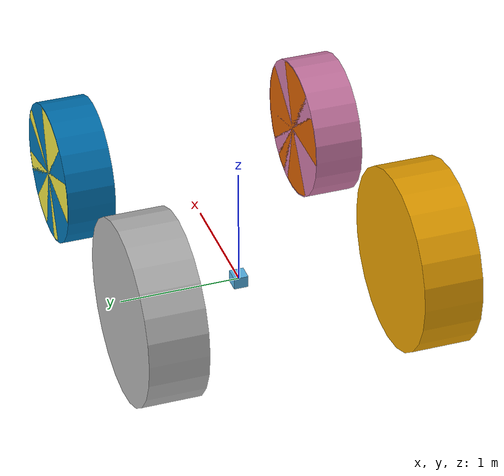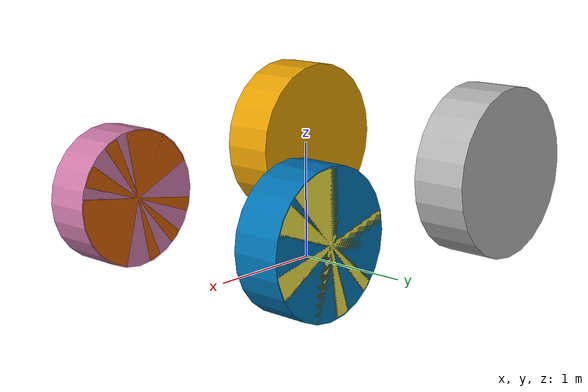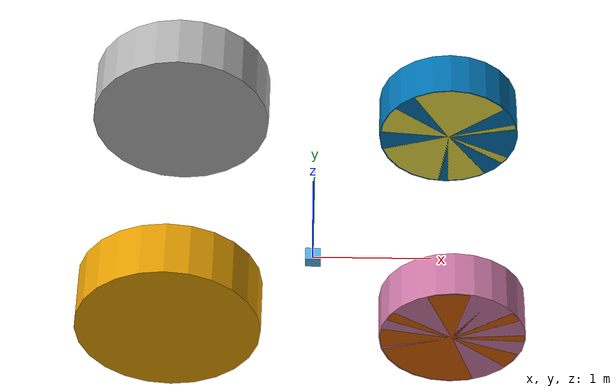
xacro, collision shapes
<?xml version="1.0"?>

<robot name="tractor_ackerman" xmlns:xacro="http://ros.org/wiki/xacro">

    <xacro:arg name="robot_namespace" default="/" />
    <xacro:include filename="$(find tractor_description)/urdf/tractor_xacro.xacro" />
    <xacro:include filename="$(find tractor_description)/urdf/tractor_steering_hinge.xacro" />
    <xacro:include filename="$(find tractor_description)/urdf/tractor_ackerman.gazebo" />

    <!-- Variables -->
    <xacro:property name="M_PI" value="3.14159"/>

    <!-- Vehicle Geometries -->
    <xacro:property name="base_x_size" value="0.13" />
    <xacro:property name="base_y_size" value="0.12" />
    <xacro:property name="base_z_size" value="0.10" />

    <xacro:property name="wheelbase" value="2.26593"/>
    <xacro:property name="front_track" value="1.722"/>
    <xacro:property name="rear_track" value="1.71325"/>
    <xacro:property name="wheel_vertical_offset" value="0.74178" />
    <xacro:property name="base_mass" value="2.1557"/>

    <xacro:property name="front_wheel_length" value="0.400" />
    <xacro:property name="front_wheel_radius" value="0.586745" />
    <xacro:property name="rear_wheel_length" value="0.47518" />
    <xacro:property name="rear_wheel_radius" value="0.74178" />

    <link name="base_footprint"/>

    <joint name="base_joint" type="fixed">
    <parent link="base_footprint"/>
    <child link="base_link"/>
    <origin xyz="0.0 0.0 0" rpy="0 0 0"/>
    </joint>
    <!-- Base link -->
    <link name="base_link">
        <visual>
            <origin xyz="0 0 0" rpy="0 0 0" />
            <geometry>
                <mesh filename="package://tractor_description/meshes/tractor_body.dae" scale="1 1 1"/>
            </geometry>
        </visual>
        <collision>
            <origin xyz="0 0 0" rpy="0 0 0" />
          <geometry>
              <box size="${base_x_size} ${base_y_size} ${base_z_size}"/>
          </geometry>
        </collision>
    </link>

    <link name="inertial_link">
        <inertial>
            <origin xyz="0.0 0.0 0.0" />
            <mass value="${base_mass}" />
            <inertia ixx="0.24" ixy="0" ixz="0"
                     iyy="0.96" iyz="0"
                     izz="0.96" />
        </inertial>
    </link>

    <joint name="inertial_joint" type="fixed">
        <origin xyz="0 0 0" rpy="0 0 0" />
        <parent link="base_link" />
        <child link="inertial_link" />
    </joint>

    <xacro:tractor_left_steering_hinge parent_prefix="base_link" wheel_prefix="left_steering_hinge">
        <origin xyz="${wheelbase/2} ${front_track/2} ${front_wheel_radius}" rpy="0 0  0" />
    </xacro:tractor_left_steering_hinge>

    <xacro:tractor_right_steering_hinge parent_prefix="base_link" wheel_prefix="right_steering_hinge">
        <origin xyz="${wheelbase/2} ${-front_track/2} ${front_wheel_radius}" rpy="${M_PI} 0 0" />
    </xacro:tractor_right_steering_hinge>

    <link name="rear_left_wheel_link">
        <inertial>
            <origin xyz="0 0 0" />
            <mass value="0.5" />
            <inertia ixx="0.01055" ixy="0" ixz="0" iyy="0.00075" iyz="0" izz="0.01055" />
        </inertial>
        <visual>
            <origin xyz="0 0 0" rpy="0 0 0" />
            <geometry>
                <mesh filename="package://tractor_description/meshes/wheel_rear_right.dae" />
            </geometry>
        </visual>
        <collision>
            <origin xyz="0 ${rear_wheel_length/2} 0" rpy="1.57 0 0" />
          <geometry>
              <cylinder length="${rear_wheel_length}" radius="${rear_wheel_radius}" />
          </geometry>
        </collision>
    </link>
    <joint name="rear_left_wheel" type="continuous">
        <parent link="base_link"/>
        <child link="rear_left_wheel_link"/>
        <origin xyz="${-wheelbase/2} ${rear_track/2} ${rear_wheel_radius}" rpy="0 0 0" />
        <axis xyz="0 1 0"/>
    </joint>

    <link name="rear_right_wheel_link">
        <inertial>
            <origin xyz="0 0 0" />
            <mass value="0.5" />
            <inertia ixx="0.01055" ixy="0" ixz="0" iyy="0.00075" iyz="0" izz="0.01055" />
        </inertial>
        <visual>
            <origin xyz="0 0 0" rpy="0 0 0" />
            <geometry>
                <mesh filename="package://tractor_description/meshes/wheel_rear_left.dae" />
            </geometry>
        </visual>
            <collision>
                <origin xyz="0 ${rear_wheel_length/2} 0" rpy="1.57 0 0" />
              <geometry>
                  <cylinder length="${rear_wheel_length}" radius="${rear_wheel_radius}" />
              </geometry>
            </collision>
        </link>

        <joint name="rear_right_wheel" type="continuous">
            <parent link="base_link"/>
            <child link="rear_right_wheel_link"/>
            <origin xyz="${-wheelbase/2} ${-rear_track/2} ${rear_wheel_radius}" rpy="${M_PI} 0 0" />
            <axis xyz="0 -1 0"/>
        </joint>
</robot>

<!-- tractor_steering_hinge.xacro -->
<robot name="tractor_steering_hinge" xmlns:xacro="http://ros.org/wiki/xacro">

    <xacro:macro name="tractor_left_steering_hinge" params="parent_prefix wheel_prefix *joint_pose">
        <link name="${wheel_prefix}">
            <inertial>
              <mass value="0.25" />
              <inertia ixx="0.00525" ixy="0" ixz="0" iyy="0.00035" iyz="0" izz="0.00525" />
              <origin xyz="0 0 0" />

            </inertial>
            <visual>
                <origin xyz="0 0 0" rpy="0 0 0" />
                <geometry>
                  <cylinder length="0.0001" radius="0.0001" />
                </geometry>
            </visual>
            <collision>
              <origin xyz="0 ${front_wheel_length/2} 0" rpy="1.57 0 0" />
              <geometry>
                  <cylinder length="${front_wheel_length}" radius="${front_wheel_radius-0.01}" />
              </geometry>
            </collision>
        </link>

        <joint name="${wheel_prefix}_wheel" type="revolute">
            <parent link="${parent_prefix}"/>
            <child link="${wheel_prefix}"/>
            <xacro:insert_block name="joint_pose"/>
            <axis xyz="0 0 1" />
            <limit lower="-0.523598767" upper="0.523598767" effort="5" velocity="0.5" />
            <dynamics damping="1.0" friction="2.0"/>

        </joint>

        <link name="front_left_wheel_link">
          <inertial>
            <mass value="0.25" />
            <inertia ixx="0.00525" ixy="0" ixz="0" iyy="0.00035" iyz="0" izz="0.00525" />
            <origin xyz="0 0 0" />

          </inertial>
          <visual>
              <origin xyz="0 0 0" rpy="0 0 0" />
              <geometry>
                  <mesh filename="package://tractor_description/meshes/wheel_front_right.dae" />
              </geometry>
          </visual>
          <collision>
            <origin xyz="0 ${front_wheel_length/2} 0" rpy="1.57 0 0" />
            <geometry>
                <cylinder length="${front_wheel_length}" radius="${front_wheel_radius}" />
            </geometry>
          </collision>
      </link>

      <joint name="front_left_wheel" type="continuous">
          <parent link="${wheel_prefix}"/>
          <child link="front_left_wheel_link"/>
          <origin xyz="0 0 0" rpy="0 0  0" />
          <axis xyz="0 1 0"/>
      </joint>
    </xacro:macro>

    <xacro:macro name="tractor_right_steering_hinge" params="parent_prefix wheel_prefix *joint_pose">
        <link name="${wheel_prefix}">
          <inertial>
            <mass value="0.25" />
            <inertia ixx="0.00525" ixy="0" ixz="0" iyy="0.00035" iyz="0" izz="0.00525" />
            <origin xyz="0 0 0" />

          </inertial>
            <visual>
                <origin xyz="0 0 0" rpy="0 0 0" />
                <geometry>
                  <cylinder length="0.0001" radius="0.0001" />
                </geometry>
            </visual>
            <collision>
              <origin xyz="0 ${front_wheel_length/2} 0" rpy="1.57 0 0" />
              <geometry>
                  <cylinder length="${front_wheel_length}" radius="${front_wheel_radius-0.01}" />
              </geometry>
            </collision>
        </link>

        <joint name="${wheel_prefix}_wheel" type="revolute">
            <parent link="${parent_prefix}"/>
            <child link="${wheel_prefix}"/>
            <xacro:insert_block name="joint_pose"/>
            <axis xyz="0 0 -1"/>
            <limit lower="-0.523598767" upper="0.523598767" effort="5" velocity="0.5" />
            <dynamics damping="1.0" friction="2.0"/>
        </joint>

        <link name="front_right_wheel_link">
          <inertial>
            <mass value="0.25" />
            <inertia ixx="0.00525" ixy="0" ixz="0" iyy="0.00035" iyz="0" izz="0.00525" />
            <origin xyz="0 0 0" />
          </inertial>
          <visual>
              <origin xyz="0 0 0" rpy="0 0 0" />
              <geometry>
                  <mesh filename="package://tractor_description/meshes/wheel_front_left.dae" />
              </geometry>
          </visual>
          <collision>
            <origin xyz="0 ${front_wheel_length/2} 0" rpy="1.57 0 0" />
            <geometry>
                <cylinder length="${front_wheel_length}" radius="${front_wheel_radius}" />
            </geometry>
          </collision>
      </link>

      <joint name="front_right_wheel" type="continuous">
          <parent link="${wheel_prefix}"/>
          <child link="front_right_wheel_link"/>
          <origin xyz="0 0 0" rpy="0 0  0" />
          <axis xyz="0 -1 0"/>
      </joint>
    </xacro:macro>
</robot>
